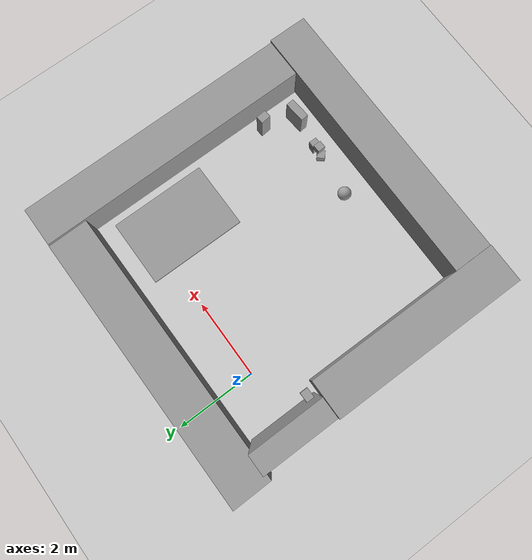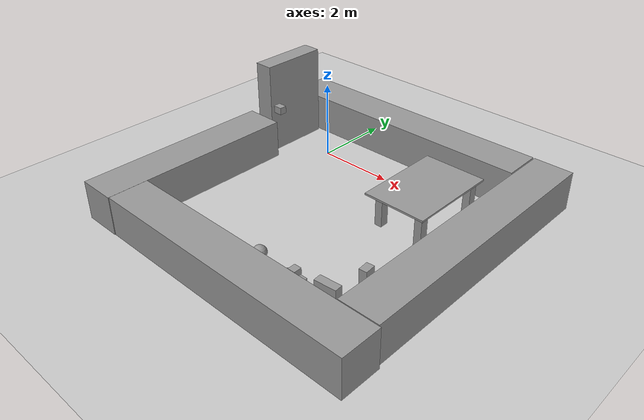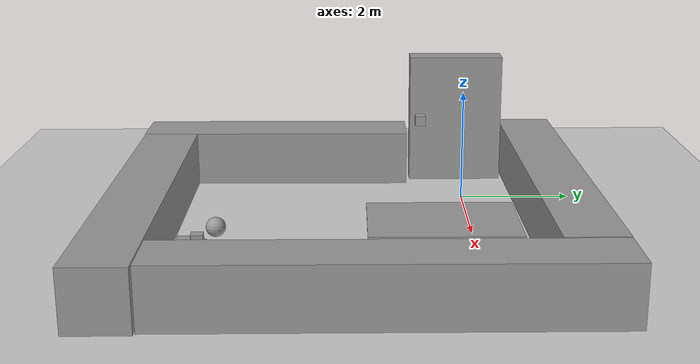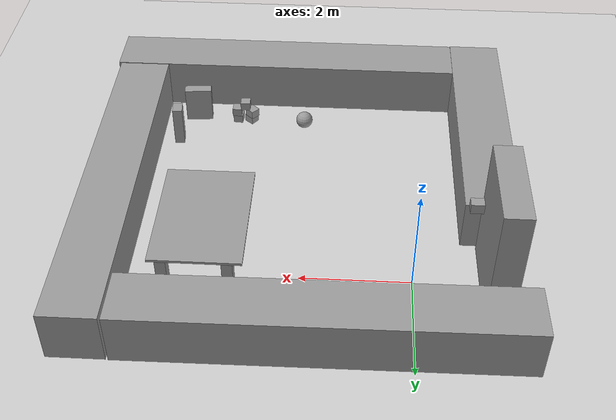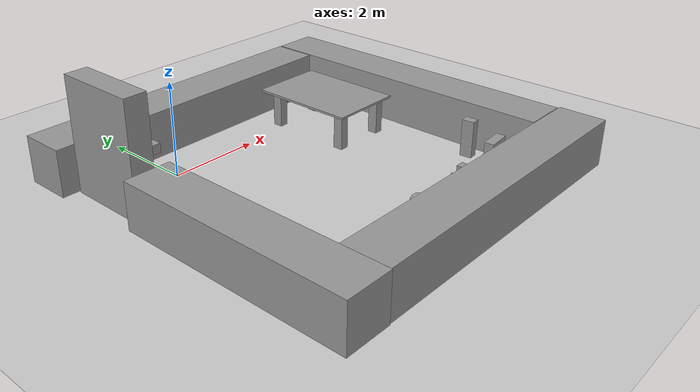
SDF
<sdf version="1.6">
 <world name="default">
  <light name="sun" type="directional">
   <pose>0 0 10 0 -0 0</pose>
   <diffuse>0.8 0.8 0.8 1</diffuse>
   <specular>0.1 0.1 0.1 1</specular>
   <attenuation>
    <range>1000</range>
    <constant>0.9</constant>
    <linear>0.01</linear>
    <quadratic>0.001</quadratic>
   </attenuation>
   <direction>-0.5 0.5 -1</direction>
  </light>
  <model name="ground_plane">
   <static>1</static>
   <link name="link">
    <collision name="collision">
     <geometry><plane><normal>0 0 1</normal><size>100 100</size></plane></geometry>
     <surface><friction><ode><mu>100</mu><mu2>50</mu2></ode></friction></surface>
    </collision>
    <visual name="visual">
     <cast_shadows>0</cast_shadows>
     <geometry><plane><normal>0 0 1</normal><size>100 100</size></plane></geometry>
     <material>
      <script><uri>file://media/materials/scripts/gazebo.material</uri><name>Gazebo/Grey</name></script>
     </material>
    </visual>
   </link>
  </model>
  <gravity>0 0 -9.8</gravity>
  <magnetic_field>6e-06 2.3e-05 -4.2e-05</magnetic_field>
  <atmosphere type="adiabatic"/>
  <physics name="default_physics" default="0" type="ode">
   <max_step_size>0.001</max_step_size>
   <real_time_factor>1</real_time_factor>
   <real_time_update_rate>1000</real_time_update_rate>
  </physics>
  <scene><ambient>0.4 0.4 0.4 1</ambient><background>0.7 0.7 0.7 1</background><shadows>1</shadows></scene>
  <spherical_coordinates>
   <surface_model>EARTH_WGS84</surface_model>
   <latitude_deg>0</latitude_deg>
   <longitude_deg>0</longitude_deg>
   <elevation>0</elevation>
   <heading_deg>0</heading_deg>
  </spherical_coordinates>
  <model name="unit_box_0_clone_0">
   <pose>2.58321 -5.54168 0.499757 0 -6.9e-05 -0.002539</pose>
   <link name="link">
    <inertial>
     <mass>1</mass>
     <inertia><ixx>0</ixx><ixy>0</ixy><ixz>0</ixz><iyy>0</iyy><iyz>0</iyz><izz>0</izz></inertia>
    </inertial>
    <collision name="collision"><geometry><box><size>6.99949 1 1</size></box></geometry></collision>
    <visual name="visual">
     <geometry><box><size>6.99949 1 1</size></box></geometry>
     <material>
      <script><name>Gazebo/Grey</name><uri>file://media/materials/scripts/gazebo.material</uri></script>
     </material>
    </visual>
   </link>
  </model>
  <model name="unit_box_0_clone_clone">
   <pose>5.51978 -1.52993 0.5 0 0 -1.56881</pose>
   <link name="link">
    <inertial>
     <mass>1</mass>
     <inertia><ixx>0</ixx><ixy>0</ixy><ixz>0</ixz><iyy>0</iyy><iyz>0</iyz><izz>0</izz></inertia>
    </inertial>
    <collision name="collision"><geometry><box><size>6.99949 1 1</size></box></geometry></collision>
    <visual name="visual">
     <geometry><box><size>6.99949 1 1</size></box></geometry>
     <material>
      <script><name>Gazebo/Grey</name><uri>file://media/materials/scripts/gazebo.material</uri></script>
     </material>
    </visual>
   </link>
  </model>
  <model name="unit_box_1_clone">
   <pose>3.52247 -4.52126 0.081374 0.0003 -0.000297 -0.091291</pose>
   <link name="unit_box_1_clone::unit_box_1_clone::link">
    <inertial>
     <mass>1</mass>
     <inertia><ixx>0</ixx><ixy>0</ixy><ixz>0</ixz><iyy>0</iyy><iyz>0</iyz><izz>0</izz></inertia>
    </inertial>
    <collision name="collision"><geometry><box><size>0.191631 0.199809 0.1656</size></box></geometry></collision>
    <visual name="visual">
     <geometry><box><size>0.191631 0.199809 0.1656</size></box></geometry>
     <material>
      <script><name>Gazebo/Grey</name><uri>file://media/materials/scripts/gazebo.material</uri></script>
     </material>
    </visual>
   </link>
  </model>
  <model name="unit_sphere_0">
   <pose>2.1278 -4.36385 0.170052 -0.01416 0.000776 0.003057</pose>
   <link name="link">
    <inertial>
     <mass>1</mass>
     <inertia><ixx>0</ixx><ixy>0</ixy><ixz>0</ixz><iyy>0</iyy><iyz>0</iyz><izz>0</izz></inertia>
    </inertial>
    <collision name="collision"><geometry><sphere><radius>0.170052</radius></sphere></geometry></collision>
    <visual name="visual">
     <geometry><sphere><radius>0.170052</radius></sphere></geometry>
     <material>
      <script><name>Gazebo/Grey</name><uri>file://media/materials/scripts/gazebo.material</uri></script>
     </material>
    </visual>
   </link>
  </model>
  <model name="unit_box_1_clone_clone_clone">
   <pose>3.24542 -4.50594 0.082637 0.000217 -0.001472 0.888715</pose>
   <link name="unit_box_1_clone_clone_clone::unit_box_1_clone_clone_clone::unit_box_1_clone_clone::unit_box_1_clone_clone::link">
    <inertial>
     <mass>1</mass>
     <inertia><ixx>0</ixx><ixy>0</ixy><ixz>0</ixz><iyy>0</iyy><iyz>0</iyz><izz>0</izz></inertia>
    </inertial>
    <collision name="collision"><geometry><box><size>0.191631 0.199809 0.1656</size></box></geometry></collision>
    <visual name="visual">
     <geometry><box><size>0.191631 0.199809 0.1656</size></box></geometry>
     <material>
      <script><name>Gazebo/Grey</name><uri>file://media/materials/scripts/gazebo.material</uri></script>
     </material>
    </visual>
   </link>
  </model>
  <model name="unit_box_1_clone_clone_clone_0">
   <pose>4.36148 -4.57855 0.363142 -2e-06 -7e-06 0.090493</pose>
   <link name="unit_box_1_clone_clone::unit_box_1_clone_clone::link">
    <inertial>
     <mass>1</mass>
     <inertia><ixx>0</ixx><ixy>0</ixy><ixz>0</ixz><iyy>0</iyy><iyz>0</iyz><izz>0</izz></inertia>
    </inertial>
    <collision name="collision">
     <geometry><box><size>0.538131 0.199809 0.726287</size></box></geometry>
    </collision>
    <visual name="visual">
     <geometry><box><size>0.538131 0.199809 0.726287</size></box></geometry>
     <material>
      <script><name>Gazebo/Grey</name><uri>file://media/materials/scripts/gazebo.material</uri></script>
     </material>
    </visual>
   </link>
  </model>
  <model name="unit_box_1_clone_clone_clone_1">
   <pose>4.6689 -3.79634 0.406679 2e-06 1e-06 0.091061</pose>
   <link name="unit_box_1_clone_clone::unit_box_1_clone_clone::link">
    <inertial>
     <mass>1</mass>
     <inertia><ixx>0</ixx><ixy>0</ixy><ixz>0</ixz><iyy>0</iyy><iyz>0</iyz><izz>0</izz></inertia>
    </inertial>
    <collision name="collision">
     <geometry><box><size>0.191631 0.262789 0.813359</size></box></geometry>
    </collision>
    <visual name="visual">
     <geometry><box><size>0.191631 0.262789 0.813359</size></box></geometry>
     <material>
      <script><name>Gazebo/Grey</name><uri>file://media/materials/scripts/gazebo.material</uri></script>
     </material>
    </visual>
   </link>
  </model>
  <model name="unit_box_2">
   <pose>-1.40944 -3.51648 0.5 -0 -1e-06 -0.004098</pose>
   <link name="link">
    <inertial>
     <mass>1</mass>
     <inertia><ixx>0</ixx><ixy>0</ixy><ixz>0</ixz><iyy>0</iyy><iyz>0</iyz><izz>0</izz></inertia>
    </inertial>
    <collision name="collision"><geometry><box><size>1 5.05969 1</size></box></geometry></collision>
    <visual name="visual">
     <geometry><box><size>1 5.05969 1</size></box></geometry>
     <material>
      <script><name>Gazebo/Grey</name><uri>file://media/materials/scripts/gazebo.material</uri></script>
     </material>
    </visual>
   </link>
  </model>
  <model name="unit_box_0_clone_0_clone">
   <pose>1.47511 1.44595 0.5 0 -0 0.008726</pose>
   <link name="link">
    <inertial>
     <mass>1</mass>
     <inertia><ixx>0</ixx><ixy>0</ixy><ixz>0</ixz><iyy>0</iyy><iyz>0</iyz><izz>0</izz></inertia>
    </inertial>
    <collision name="collision"><geometry><box><size>6.99949 1 1</size></box></geometry></collision>
    <visual name="visual">
     <geometry><box><size>6.99949 1 1</size></box></geometry>
     <material>
      <script><name>Gazebo/Grey</name><uri>file://media/materials/scripts/gazebo.material</uri></script>
     </material>
    </visual>
   </link>
  </model>
  <model name="unit_box_0">
   <pose>-1.42427 -0.028471 1.21559 1e-06 0 -3.1e-05</pose>
   <link name="unit_box_0::link">
    <inertial>
     <mass>1</mass>
     <inertia><ixx>0</ixx><ixy>0</ixy><ixz>0</ixz><iyy>0</iyy><iyz>0</iyz><izz>0</izz></inertia>
    </inertial>
    <collision name="collision"><geometry><box><size>0.487774 1.77265 2.43119</size></box></geometry></collision>
    <visual name="visual">
     <geometry><box><size>0.487774 1.77265 2.43119</size></box></geometry>
     <material>
      <script><name>Gazebo/Grey</name><uri>file://media/materials/scripts/gazebo.material</uri></script>
     </material>
    </visual>
   </link>
  </model>
  <model name="unit_box_1">
   <pose>-1.05257 -0.721728 1.23516 0 -0 0</pose>
   <link name="unit_box_1::link">
    <inertial>
     <mass>1</mass>
     <inertia><ixx>0</ixx><ixy>0</ixy><ixz>0</ixz><iyy>0</iyy><iyz>0</iyz><izz>0</izz></inertia>
    </inertial>
    <collision name="collision">
     <geometry><box><size>0.238713 0.191816 0.190692</size></box></geometry>
    </collision>
    <visual name="visual">
     <geometry><box><size>0.238713 0.191816 0.190692</size></box></geometry>
     <material>
      <script><name>Gazebo/Grey</name><uri>file://media/materials/scripts/gazebo.material</uri></script>
     </material>
    </visual>
    <gravity>0</gravity>
   </link>
  </model>
  <model name="unit_box_3">
   <pose>4.34567 0.257581 0.400154 5e-06 0 0.003295</pose>
   <link name="link">
    <inertial>
     <mass>1</mass>
     <inertia><ixx>0</ixx><ixy>0</ixy><ixz>0</ixz><iyy>0</iyy><iyz>0</iyz><izz>0</izz></inertia>
    </inertial>
    <collision name="collision"><geometry><box><size>0.19265 0.218178 0.800307</size></box></geometry></collision>
    <visual name="visual">
     <geometry><box><size>0.19265 0.218178 0.800307</size></box></geometry>
     <material>
      <script><name>Gazebo/Grey</name><uri>file://media/materials/scripts/gazebo.material</uri></script>
     </material>
    </visual>
   </link>
  </model>
  <model name="unit_box_3_clone">
   <pose>4.3258 -1.5831 0.400154 0 -0 0.000651</pose>
   <link name="link">
    <inertial>
     <mass>1</mass>
     <inertia><ixx>0</ixx><ixy>0</ixy><ixz>0</ixz><iyy>0</iyy><iyz>0</iyz><izz>0</izz></inertia>
    </inertial>
    <collision name="collision"><geometry><box><size>0.19265 0.218179 0.800307</size></box></geometry></collision>
    <visual name="visual">
     <geometry><box><size>0.19265 0.218179 0.800307</size></box></geometry>
     <material>
      <script><name>Gazebo/Grey</name><uri>file://media/materials/scripts/gazebo.material</uri></script>
     </material>
    </visual>
   </link>
  </model>
  <model name="unit_box_3_clone_0">
   <pose>3.18754 -1.55921 0.400154 -1e-06 -3e-06 0.000931</pose>
   <link name="link">
    <inertial>
     <mass>1</mass>
     <inertia><ixx>0</ixx><ixy>0</ixy><ixz>0</ixz><iyy>0</iyy><iyz>0</iyz><izz>0</izz></inertia>
    </inertial>
    <collision name="collision"><geometry><box><size>0.19265 0.218179 0.800307</size></box></geometry></collision>
    <visual name="visual">
     <geometry><box><size>0.19265 0.218179 0.800307</size></box></geometry>
     <material>
      <script><name>Gazebo/Grey</name><uri>file://media/materials/scripts/gazebo.material</uri></script>
     </material>
    </visual>
   </link>
  </model>
  <model name="unit_box_3_clone_1">
   <pose>3.20027 0.240977 0.400091 3e-06 -9e-06 -0.000297</pose>
   <link name="link">
    <inertial>
     <mass>1</mass>
     <inertia><ixx>0</ixx><ixy>0</ixy><ixz>0</ixz><iyy>0</iyy><iyz>0</iyz><izz>0</izz></inertia>
    </inertial>
    <collision name="collision"><geometry><box><size>0.19265 0.218179 0.800307</size></box></geometry></collision>
    <visual name="visual">
     <geometry><box><size>0.19265 0.218179 0.800307</size></box></geometry>
     <material>
      <script><name>Gazebo/Grey</name><uri>file://media/materials/scripts/gazebo.material</uri></script>
     </material>
    </visual>
   </link>
  </model>
  <model name="unit_box_4">
   <pose>3.72066 -0.654954 0.824664 -1.3e-05 -2.1e-05 -2.5e-05</pose>
   <link name="link">
    <inertial>
     <mass>1</mass>
     <inertia><ixx>0</ixx><ixy>0</ixy><ixz>0</ixz><iyy>0</iyy><iyz>0</iyz><izz>0</izz></inertia>
    </inertial>
    <collision name="collision"><geometry><box><size>1.63338 2.34753 0.048709</size></box></geometry></collision>
    <visual name="visual">
     <geometry><box><size>1.63338 2.34753 0.048709</size></box></geometry>
     <material>
      <script><name>Gazebo/Grey</name><uri>file://media/materials/scripts/gazebo.material</uri></script>
     </material>
    </visual>
   </link>
  </model>
  <model name="unit_box_1_clone_clone_clone_clone">
   <pose>3.22518 -4.47285 0.246889 0.000666 -0.003698 0.792045</pose>
   <link name="unit_box_1_clone_clone_clone_clone::unit_box_1_clone_clone_clone::unit_box_1_clone_clone::unit_box_1_clone_clone::link">
    <inertial>
     <mass>1</mass>
     <inertia><ixx>0</ixx><ixy>0</ixy><ixz>0</ixz><iyy>0</iyy><iyz>0</iyz><izz>0</izz></inertia>
    </inertial>
    <collision name="collision"><geometry><box><size>0.191631 0.199809 0.1656</size></box></geometry></collision>
    <visual name="visual">
     <geometry><box><size>0.191631 0.199809 0.1656</size></box></geometry>
     <material>
      <script><name>Gazebo/Grey</name><uri>file://media/materials/scripts/gazebo.material</uri></script>
     </material>
    </visual>
   </link>
  </model>
  <model name="unit_box_1_clone_clone_0">
   <pose>3.5452 -4.52542 0.246736 0.000369 -0.000398 -0.013348</pose>
   <link name="unit_box_1_clone_clone_0::unit_box_1_clone::link">
    <inertial>
     <mass>1</mass>
     <inertia><ixx>0</ixx><ixy>0</ixy><ixz>0</ixz><iyy>0</iyy><iyz>0</iyz><izz>0</izz></inertia>
    </inertial>
    <collision name="collision"><geometry><box><size>0.191631 0.199809 0.1656</size></box></geometry></collision>
    <visual name="visual">
     <geometry><box><size>0.191631 0.199809 0.1656</size></box></geometry>
     <material>
      <script><name>Gazebo/Grey</name><uri>file://media/materials/scripts/gazebo.material</uri></script>
     </material>
    </visual>
   </link>
  </model>
  <model name="unit_box_1_clone_clone">
   <pose>3.36858 -4.51232 0.41342 0.00635 0.005382 0.021025</pose>
   <link name="unit_box_1_clone_clone::unit_box_1_clone_clone::unit_box_1_clone::unit_box_1_clone::link">
    <inertial>
     <mass>1</mass>
     <inertia><ixx>0</ixx><ixy>0</ixy><ixz>0</ixz><iyy>0</iyy><iyz>0</iyz><izz>0</izz></inertia>
    </inertial>
    <collision name="collision"><geometry><box><size>0.191631 0.199809 0.1656</size></box></geometry></collision>
    <visual name="visual">
     <geometry><box><size>0.191631 0.199809 0.1656</size></box></geometry>
     <material>
      <script><name>Gazebo/Grey</name><uri>file://media/materials/scripts/gazebo.material</uri></script>
     </material>
    </visual>
   </link>
  </model>
 </world>
</sdf>
